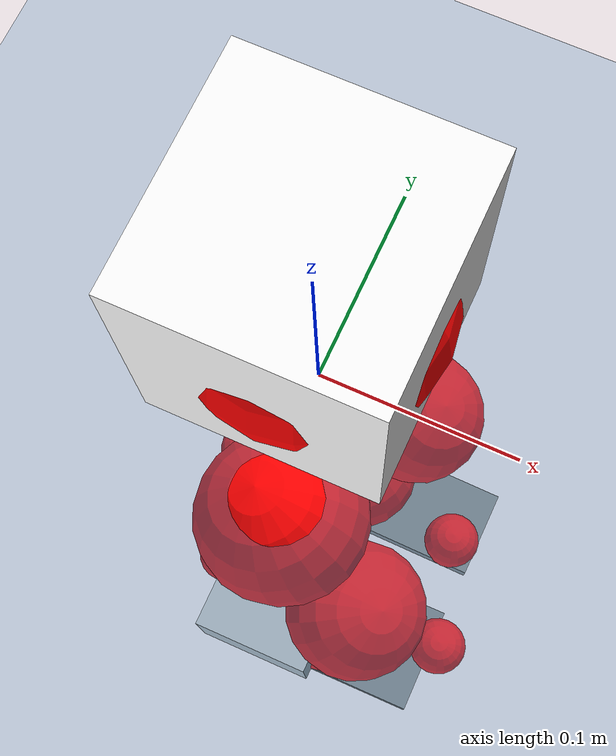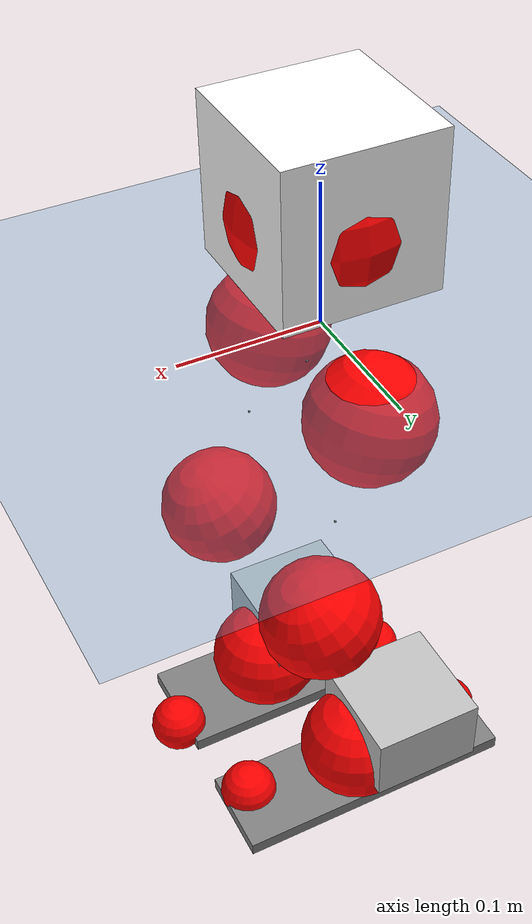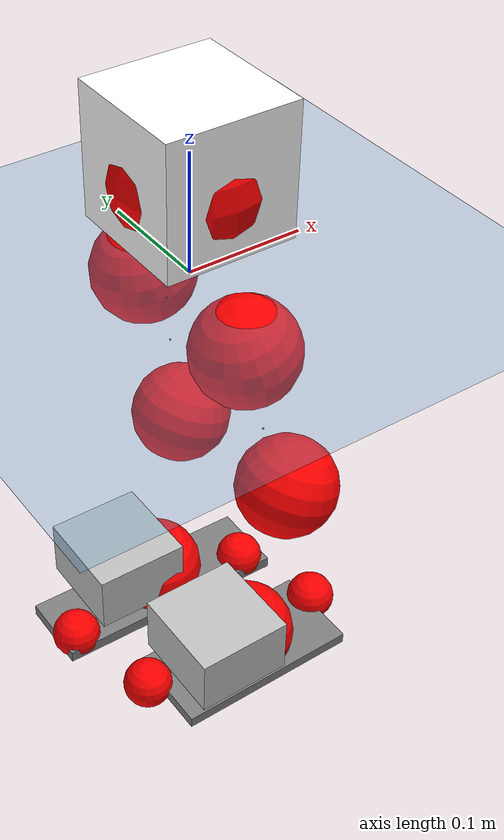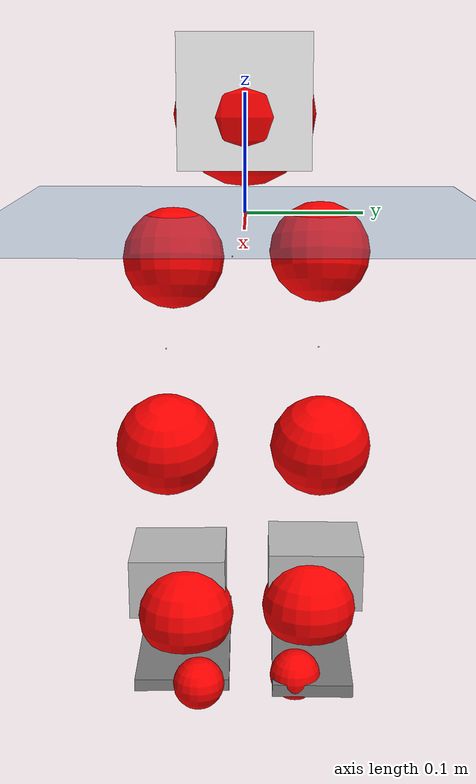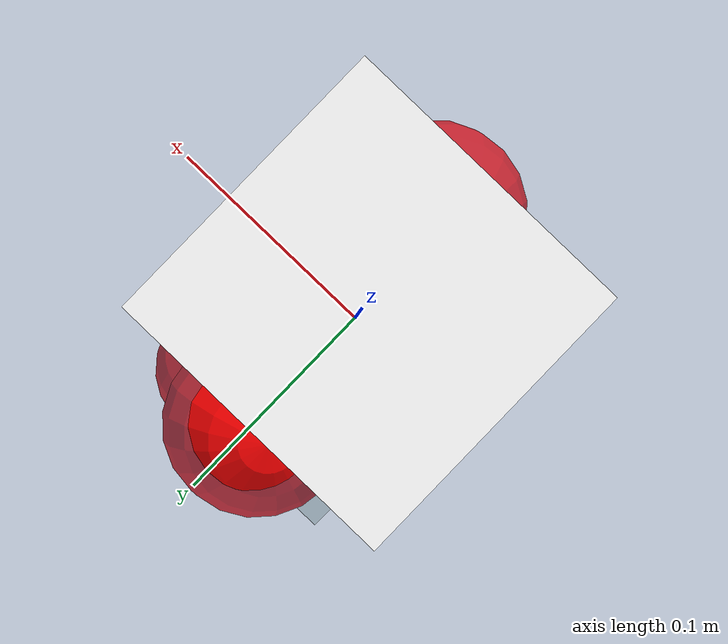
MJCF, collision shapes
<mujoco model="pi_12dof_release_v1">
  <compiler angle="radian" assetdir="assets" balanceinertia="true" inertiafromgeom="false"/>

  <option timestep="0.005" density="1.2" viscosity="2e-05"/>

  <size nkey="1"/>

  <visual>
    <quality shadowsize="8192"/>
    <map shadowclip="0.5"/>
  </visual>

  <default>
    <default class="/">
      <joint armature="0.01" damping="0.01" frictionloss="0.01"/>
      <geom contype="0" conaffinity="0" group="1" solref="-1000 -80"/>
      <site size="0.01 0.005 0.005" group="5"/>
      <general forcelimited="true" biastype="affine" gainprm="20" biasprm="0 -20 -0.5"/>
      <default class="foot">
        <geom size="0.0845 0.036 0.005" type="box" condim="6" group="4" priority="1" friction="0.9 0.2 0.2" solimp="0.015 1 0.005"/>
      </default>
      <default class="reward_collision_sphere">
        <geom group="5" rgba="1 0 0 1"/>
      </default>
    </default>
  </default>

  <asset>
    <texture type="skybox" colorspace="auto" name="//unnamed_texture_0" builtin="gradient" rgb1="0.95 0.95 0.95" rgb2="0.95 0.95 0.95" width="100" height="600"/>
    <texture type="2d" colorspace="auto" name="texplane" builtin="checker" rgb1="0.345 0.575 0.748" rgb2="0.345 0.575 0.748" markrgb="1 1 1" width="512" height="512"/>
    <material name="MatPlane" class="/" texture="texplane" texuniform="true" texrepeat="2 2" specular="0.9"/>
    <mesh name="baselink_1" class="/" file="baselink_1.STL"/>
    <mesh name="r_hip_pitch_link" class="/" file="r_hip_pitch_link.STL"/>
    <mesh name="r_hip_roll_link" class="/" file="r_hip_roll_link.STL"/>
    <mesh name="r_thigh_link" class="/" file="r_thigh_link.STL"/>
    <mesh name="r_calf_link" class="/" file="r_calf_link.STL"/>
    <mesh name="r_ankle_pitch_link" class="/" file="r_ankle_pitch_link.STL"/>
    <mesh name="r_ankle_roll_link" class="/" file="r_ankle_roll_link.STL"/>
    <mesh name="l_hip_pitch_link" class="/" file="l_hip_pitch_link.STL"/>
    <mesh name="l_hip_roll_link" class="/" file="l_hip_roll_link.STL"/>
    <mesh name="l_thigh_link" class="/" file="l_thigh_link.STL"/>
    <mesh name="l_calf_link" class="/" file="l_calf_link.STL"/>
    <mesh name="l_ankle_pitch_link" class="/" file="l_ankle_pitch_link.STL"/>
    <mesh name="l_ankle_roll_link" class="/" file="l_ankle_roll_link.STL"/>
  </asset>

  <worldbody>
    <geom name="floor" class="/" size="100 100 0.125" type="plane" group="0" material="MatPlane"/>
    <light name="toplight_shadow" class="/" pos="0 0 5" dir="0.0990148 0.0990148 -0.990148" type="directional" ambient="0.04 0.04 0.04" diffuse="0.55 0.55 0.55" specular="0.12 0.12 0.12"/>
    <light name="toplight_fill" class="/" pos="0 0 5" dir="0.0990148 0.0990148 -0.990148" type="directional" castshadow="false" ambient="0.04 0.04 0.04" diffuse="0.3 0.3 0.3" specular="0.08 0.08 0.08"/>
    <body name="trunk" pos="-0.000609431 -0.000299692 -0.000436162" quat="1 -0.000640891 -0.00029427 -0.000313197">
      <inertial pos="0.0129965 0.00648063 0.0490666" quat="0.692188 0.00781881 0.0112475 0.721587" mass="2.50149" diaginertia="0.0419064 0.00189304 0.00992707"/>
      <joint name="//unnamed_joint_0" type="free"/>
      <geom name="//unnamed_geom_1" class="/" type="mesh" density="0" rgba="1 1 1 1" mesh="baselink_1"/>
      <geom name="//unnamed_geom_2" class="/" size="0.0540319 0.0540319 0.0540319" pos="0 0 0.0944198" type="box" rgba="1 1 1 1"/>
      <geom name="//unnamed_geom_3" class="reward_collision_sphere" size="0.0594351" pos="0 0 0.0826173"/>
      <site name="imu" class="/" pos="-0.0392114 0.00145835 0.0389393" size="0.0108064"/>
      <camera name="track" class="/" pos="0 -1.46161 0" quat="0.707107 0.707107 0 0" mode="trackcom"/>
      <camera name="ego_camera" class="/" pos="0.0998145 0 0.212445" quat="-0.5 -0.5 0.5 0.5"/>
      <body name="r_hip_pitch_link" pos="0.00492196 -0.0108749 -0.0362027" quat="0.992202 9.23644e-05 -0.124644 8.31663e-06">
        <inertial pos="0.00122845 -0.0354647 -0.000398004" quat="-0.0189149 0.705048 -0.031306 0.708216" mass="0.508937" diaginertia="0.000515623 2.46059e-05 0.000212063"/>
        <joint name="r_hip_pitch_joint" class="/" pos="0 0 0" axis="-0.0145293 -0.999893 0.00149459" range="-1.69705 1.41833" armature="0.0142783" damping="0.0161933" frictionloss="0.011483"/>
        <geom name="//unnamed_geom_4" class="/" type="mesh" density="0" rgba="0.75294 0.75294 0.75294 1" mesh="r_hip_pitch_link"/>
        <geom name="//unnamed_geom_5" class="/" size="0.000540319 0.000540319 0.000540319" type="box" rgba="0.75294 0.75294 0.75294 1"/>
        <body name="r_hip_roll_link" pos="0.00290986 -0.049923 -0.00158344" quat="0.999993 0.00178401 -0.00288315 -0.00144815">
          <inertial pos="0.0015751 0.00022304 -0.0749902" quat="0.691015 -0.096956 -0.0786921 0.711973" mass="0.504167" diaginertia="0.00137067 6.29184e-05 0.000287005"/>
          <joint name="r_hip_roll_joint" class="/" pos="0 0 0" axis="-0.999702 0.024155 -0.00345632" stiffness="0.00123409" range="-0.0788701 0.508749" armature="0.0127141" damping="0.0445226" frictionloss="0.006342"/>
          <geom name="//unnamed_geom_6" class="/" type="mesh" density="0" rgba="0.75294 0.75294 0.75294 1" mesh="r_hip_roll_link"/>
          <geom name="//unnamed_geom_7" class="/" size="0.000540319 0.000540319 0.000540319" type="box" rgba="0.75294 0.75294 0.75294 1"/>
          <geom name="//unnamed_geom_8" class="reward_collision_sphere" size="0.0432255"/>
          <body name="r_thigh_link" pos="-0.0056549 -0.00696056 -0.0773724" quat="1 0.000287254 -0.000435805 2.20416e-05">
            <inertial pos="0.00224402 0.00256002 -0.0543574" quat="0.741622 0.670816 -0.000572938 0.00147275" mass="0.140436" diaginertia="0.000551364 1.98543e-05 0.000132068"/>
            <joint name="r_thigh_joint" class="/" pos="0 0 0" axis="-0.00112084 -0.00410854 -0.999991" range="-0.210128 0.548015" armature="0.00605755" damping="0.00286648" frictionloss="0.00963869"/>
            <geom name="//unnamed_geom_9" class="/" type="mesh" density="0" rgba="0.75294 0.75294 0.75294 1" mesh="r_thigh_link"/>
            <geom name="//unnamed_geom_10" class="/" size="0.000540319 0.000540319 0.000540319" type="box" rgba="0.75294 0.75294 0.75294 1"/>
            <body name="r_calf_link" pos="0.00805601 0.00164754 -0.0814685" quat="0.947484 -0.000141086 0.319802 0.000118044">
              <inertial pos="0.00311977 0.00922252 -0.0784766" quat="0.999051 0.0395021 0.00369863 0.0179933" mass="1.02028" diaginertia="0.016043 0.000672381 0.000433369"/>
              <joint name="r_calf_joint" class="/" pos="0 0 0" axis="0.00966794 -0.999737 0.0207929" stiffness="0.00431114" range="-1.64239 0.624692" armature="0.0119697" damping="0.00184329" frictionloss="0.0119088"/>
              <geom name="//unnamed_geom_11" class="/" type="mesh" density="0" rgba="0.75294 0.75294 0.75294 1" mesh="r_calf_link"/>
              <geom name="//unnamed_geom_12" class="/" size="0.000540319 0.000540319 0.000540319" type="box" rgba="0.75294 0.75294 0.75294 1"/>
              <geom name="//unnamed_geom_13" class="reward_collision_sphere" size="0.0432255"/>
              <body name="r_ankle_pitch_link" pos="-0.00374773 0.0035797 -0.159179" quat="0.980191 -0.000589128 -0.198031 0.00298931">
                <inertial pos="-0.00173845 0.00266842 0.00278221" quat="0.00528002 0.708007 -0.0173968 0.705972" mass="0.203291" diaginertia="0.00131934 4.89395e-05 0.000243078"/>
                <joint name="r_ankle_pitch_joint" class="/" pos="0 0 0" axis="-0.0198709 -0.999782 0.00644506" stiffness="0.0209242" range="-1.43652 0.422428" armature="0.0090013" damping="0.0370512" frictionloss="0.00971678"/>
                <geom name="//unnamed_geom_14" class="/" type="mesh" density="0" rgba="0.75294 0.75294 0.75294 1" mesh="r_ankle_pitch_link"/>
                <geom name="//unnamed_geom_15" class="/" size="0.0421449 0.0432255 0.0270159" type="box" rgba="0.75294 0.75294 0.75294 1"/>
                <body name="r_ankle_roll_link" pos="0.10292 0.00753753 -0.000175415" quat="0.999999 -0.000826587 -0.00030348 0.00116667">
                  <inertial pos="-0.0265843 0.000367292 -0.0185957" quat="0.581469 0.427235 0.396987 0.567244" mass="0.586602" diaginertia="0.00433919 0.00020444 0.000606503"/>
                  <joint name="r_ankle_roll_joint" class="/" pos="0 0 0" axis="-0.999919 0.00757003 -0.0102521" range="-0.228428 0.188437" armature="0.00630226" damping="0.000447496" frictionloss="0.011098"/>
                  <geom name="//unnamed_geom_16" class="/" type="mesh" density="0" rgba="0.75294 0.75294 0.75294 1" mesh="r_ankle_roll_link"/>
                  <geom name="//unnamed_geom_17" class="/" type="mesh" rgba="0.75294 0.75294 0.75294 1" mesh="r_ankle_roll_link"/>
                  <geom name="right_foot" class="foot" size="0.0830296 0.0400355 0.00508617" pos="-0.0678739 0 -0.0519309"/>
                  <geom name="//unnamed_geom_19" class="reward_collision_sphere" size="0.0432255" pos="-0.066543 0 -0.0236049"/>
                  <geom name="//unnamed_geom_20" class="reward_collision_sphere" size="0.0216127" pos="0.0199629 0.0146161 -0.0472099"/>
                  <geom name="//unnamed_geom_21" class="reward_collision_sphere" size="0.0216127" pos="-0.159703 0.0146161 -0.0472099"/>
                  <site name="right_foot" class="foot" pos="-0.0678739 0 -0.0519309" size="0.0108064"/>
                </body>
              </body>
            </body>
          </body>
        </body>
      </body>
      <body name="l_hip_pitch_link" pos="-0.00682063 0.0216462 -0.0321137" quat="0.992206 6.01935e-05 -0.124605 -0.000257916">
        <inertial pos="0.00128356 0.0354289 0.00828974" quat="-0.0402609 0.718902 0.00840359 0.693894" mass="0.443466" diaginertia="0.000420465 1.94054e-05 0.000213537"/>
        <joint name="l_hip_pitch_joint" class="/" pos="0 0 0" axis="-0.00572943 0.999981 -0.00226283" stiffness="0.0182622" range="-1.21204 1.76378" armature="0.0117968" damping="0" frictionloss="0.0129764"/>
        <geom name="//unnamed_geom_22" class="/" type="mesh" density="0" rgba="0.75294 0.75294 0.75294 1" mesh="l_hip_pitch_link"/>
        <geom name="//unnamed_geom_23" class="/" size="0.000540319 0.000540319 0.000540319" type="box" rgba="0.75294 0.75294 0.75294 1"/>
        <body name="l_hip_roll_link" pos="0.00644287 0.0426682 -0.00232598" quat="1 5.93324e-07 -3.26359e-05 -0.000623025">
          <inertial pos="0.00712721 -5.22069e-05 -0.0633354" quat="0.700665 -0.0713169 -0.0765446 0.705778" mass="0.524497" diaginertia="0.00163728 5.7712e-05 0.000307903"/>
          <joint name="l_hip_roll_joint" class="/" pos="0 0 0" axis="-0.999979 -4.5353e-05 -0.00652305" range="-0.5096 0.0874614" armature="0.0105159" damping="0" frictionloss="0.0123483"/>
          <geom name="//unnamed_geom_24" class="/" type="mesh" density="0" rgba="0.75294 0.75294 0.75294 1" mesh="l_hip_roll_link"/>
          <geom name="//unnamed_geom_25" class="/" size="0.000540319 0.000540319 0.000540319" type="box" rgba="0.75294 0.75294 0.75294 1"/>
          <geom name="//unnamed_geom_26" class="reward_collision_sphere" size="0.0432255"/>
          <body name="l_thigh_link" pos="0.0031413 -0.00109296 -0.0818266" quat="1 1.87988e-05 -1.00892e-05 -2.25072e-06">
            <inertial pos="-0.00224555 -0.00779062 -0.0561507" quat="0.670579 0.741655 -0.0156561 0.00511662" mass="0.12563" diaginertia="0.000480622 1.5852e-05 0.000116298"/>
            <joint name="l_thigh_joint" class="/" pos="0 0 0" axis="-0.00072865 -0.00344815 -0.999994" stiffness="0.0310582" range="-0.437733 0.363263" armature="0.0106693" damping="0" frictionloss="0.0114196"/>
            <geom name="//unnamed_geom_27" class="/" type="mesh" density="0" rgba="0.75294 0.75294 0.75294 1" mesh="l_thigh_link"/>
            <geom name="//unnamed_geom_28" class="/" size="0.000540319 0.000540319 0.000540319" type="box" rgba="0.75294 0.75294 0.75294 1"/>
            <body name="l_calf_link" pos="-0.00971448 0.00192159 -0.0850226" quat="0.947215 -0.000860205 0.320599 -0.000360617">
              <inertial pos="0.00345358 -7.06446e-06 -0.0739129" quat="0.998996 -0.0224367 0.00472256 -0.0384756" mass="1.06051" diaginertia="0.0163433 0.000826726 0.000450104"/>
              <joint name="l_calf_joint" class="/" pos="0 0 0" axis="-0.0241416 0.999584 0.0157576" stiffness="0.000186689" range="-0.66094 1.64162" armature="0.0106088" damping="0.0301619" frictionloss="0.0104399"/>
              <geom name="//unnamed_geom_29" class="/" type="mesh" density="0" rgba="0.75294 0.75294 0.75294 1" mesh="l_calf_link"/>
              <geom name="//unnamed_geom_30" class="/" size="0.000540319 0.000540319 0.000540319" type="box" rgba="0.75294 0.75294 0.75294 1"/>
              <geom name="//unnamed_geom_31" class="reward_collision_sphere" size="0.0432255"/>
              <body name="l_ankle_pitch_link" pos="-0.00858708 -0.000126857 -0.157788" quat="0.980134 -0.00228185 -0.19831 -0.00208007">
                <inertial pos="0.00778323 -0.00366396 0.000729382" quat="-0.00376559 0.707293 0.00124911 0.706909" mass="0.246484" diaginertia="0.00142772 4.70572e-05 0.000279926"/>
                <joint name="l_ankle_pitch_joint" class="/" pos="0 0 0" axis="-0.000776754 0.999968 0.00800494" range="-0.459089 1.37922" armature="0.0126736" damping="0" frictionloss="0.0101414"/>
                <geom name="//unnamed_geom_32" class="/" type="mesh" density="0" rgba="0.75294 0.75294 0.75294 1" mesh="l_ankle_pitch_link"/>
                <geom name="//unnamed_geom_33" class="/" size="0.0421449 0.0432255 0.0270159" type="box" rgba="0.75294 0.75294 0.75294 1"/>
                <body name="l_ankle_roll_link" pos="0.101877 -0.00566711 -0.000840795" quat="0.999992 -0.000805644 0.00365552 -0.00106709">
                  <inertial pos="-0.0379133 0.00145813 -0.017016" quat="0.558762 0.409018 0.447151 0.566167" mass="0.630571" diaginertia="0.00475318 0.00021445 0.000662147"/>
                  <joint name="l_ankle_roll_joint" class="/" pos="0 0 0" axis="-0.99999 -0.000807504 0.00442339" stiffness="0.0374885" range="-0.282739 0.236885" armature="0.0074823" damping="0" frictionloss="0.00994838"/>
                  <geom name="//unnamed_geom_34" class="/" type="mesh" density="0" rgba="0.75294 0.75294 0.75294 1" mesh="l_ankle_roll_link"/>
                  <geom name="//unnamed_geom_35" class="/" type="mesh" rgba="0.75294 0.75294 0.75294 1" mesh="l_ankle_roll_link"/>
                  <geom name="left_foot" class="foot" size="0.107937 0.0341423 0.00537207" pos="-0.0678739 0 -0.0519309"/>
                  <geom name="//unnamed_geom_37" class="reward_collision_sphere" size="0.0432255" pos="-0.066543 0 -0.0236049"/>
                  <geom name="//unnamed_geom_38" class="reward_collision_sphere" size="0.0216127" pos="0.0199629 -0.0146161 -0.0472099"/>
                  <geom name="//unnamed_geom_39" class="reward_collision_sphere" size="0.0216127" pos="-0.159703 -0.0146161 -0.0472099"/>
                  <site name="left_foot" class="foot" pos="-0.0678739 0 -0.0519309" size="0.0108064"/>
                </body>
              </body>
            </body>
          </body>
        </body>
      </body>
    </body>
  </worldbody>

  <contact>
    <pair class="/" geom1="floor" geom2="right_foot" name="//unnamed_contact_1"/>
    <pair class="/" geom1="floor" geom2="left_foot" name="//unnamed_contact_0"/>
  </contact>

  <actuator>
    <general name="r_hip_pitch_joint" class="/" joint="r_hip_pitch_joint" forcerange="-17.8678 17.8678" gainprm="27.0076" biasprm="0 -27.0076 -0.598605"/>
    <general name="r_hip_roll_joint" class="/" joint="r_hip_roll_joint" forcerange="-22.5135 22.5135" gainprm="27.0076" biasprm="0 -27.0076 -0.598605"/>
    <general name="r_thigh_joint" class="/" joint="r_thigh_joint" forcerange="-24.5699 24.5699" gainprm="27.0076" biasprm="0 -27.0076 -0.598605"/>
    <general name="r_calf_joint" class="/" joint="r_calf_joint" forcerange="-16.2133 16.2133" gainprm="27.0076" biasprm="0 -27.0076 -0.598605"/>
    <general name="r_ankle_pitch_joint" class="/" joint="r_ankle_pitch_joint" forcerange="-23.8518 23.8518" gainprm="27.0076" biasprm="0 -27.0076 -0.598605"/>
    <general name="r_ankle_roll_joint" class="/" joint="r_ankle_roll_joint" forcerange="-20.9115 20.9115" gainprm="27.0076" biasprm="0 -27.0076 -0.598605"/>
    <general name="l_hip_pitch_joint" class="/" joint="l_hip_pitch_joint" forcerange="-27.3073 27.3073" gainprm="27.0076" biasprm="0 -27.0076 -0.598605"/>
    <general name="l_hip_roll_joint" class="/" joint="l_hip_roll_joint" forcerange="-29.8334 29.8334" gainprm="27.0076" biasprm="0 -27.0076 -0.598605"/>
    <general name="l_thigh_joint" class="/" joint="l_thigh_joint" forcerange="-22.9327 22.9327" gainprm="27.0076" biasprm="0 -27.0076 -0.598605"/>
    <general name="l_calf_joint" class="/" joint="l_calf_joint" forcerange="-23.9803 23.9803" gainprm="27.0076" biasprm="0 -27.0076 -0.598605"/>
    <general name="l_ankle_pitch_joint" class="/" joint="l_ankle_pitch_joint" forcerange="-18.8803 18.8803" gainprm="27.0076" biasprm="0 -27.0076 -0.598605"/>
    <general name="l_ankle_roll_joint" class="/" joint="l_ankle_roll_joint" forcerange="-21.5153 21.5153" gainprm="27.0076" biasprm="0 -27.0076 -0.598605"/>
  </actuator>

  <sensor>
    <gyro site="imu" name="imu_angular_velocity"/>
    <velocimeter site="imu" name="imu_linear_velocity"/>
    <framelinvel objtype="site" objname="left_foot" name="left_foot_global_linear_velocity"/>
    <framelinvel objtype="site" objname="right_foot" name="right_foot_global_linear_velocity"/>
  </sensor>

  <keyframe>
    <key name="home" qpos="0 0 0.291 1 0 0 0 0.4 0 0 -0.8 0.4 0 -0.4 0 0 0.8 -0.4 0"/>
  </keyframe>
</mujoco>
